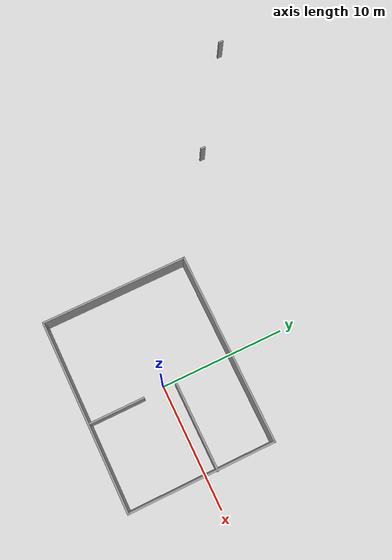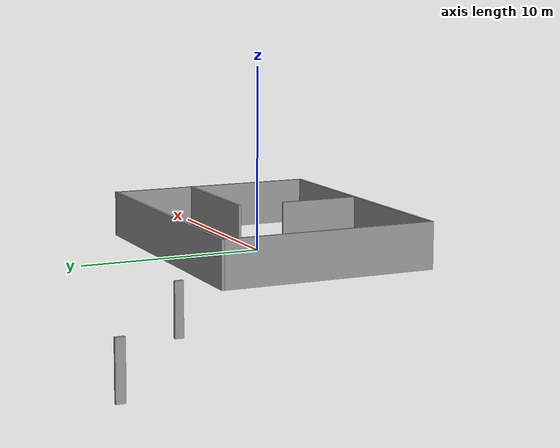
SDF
<?xml version='1.0'?>
<sdf version='1.6'>
  <model name='mars_student2'>
    <pose frame=''>-7.81529 5.00826 0 0 -0 0</pose>
    <link name='Wall_10'>
      <collision name='Wall_10_Collision'>
        <geometry>
          <box>
            <size>11.75 0.15 2.5</size>
          </box>
        </geometry>
        <pose frame=''>0 0 1.25 0 -0 0</pose>
      </collision>
      <visual name='Wall_10_Visual'>
        <pose frame=''>0 0 1.25 0 -0 0</pose>
        <geometry>
          <box>
            <size>11.75 0.15 2.5</size>
          </box>
        </geometry>
        <material>
          <script>
            <uri>file://media/materials/scripts/gazebo.material</uri>
            <name>Gazebo/Grey</name>
          </script>
          <ambient>1 1 1 1</ambient>
        </material>
        <meta>
          <layer>0</layer>
        </meta>
      </visual>
      <pose frame=''>15.0087 -5.31992 0 0 -0 1.5708</pose>
    </link>
    <link name='Wall_12'>
      <collision name='Wall_12_Collision'>
        <geometry>
          <box>
            <size>0.4 0.15 2.5</size>
          </box>
        </geometry>
        <pose frame=''>0 0 1.25 0 -0 0</pose>
      </collision>
      <visual name='Wall_12_Visual'>
        <pose frame=''>0 0 1.25 0 -0 0</pose>
        <geometry>
          <box>
            <size>0.4 0.15 2.5</size>
          </box>
        </geometry>
        <material>
          <script>
            <uri>file://media/materials/scripts/gazebo.material</uri>
            <name>Gazebo/Grey</name>
          </script>
          <ambient>1 1 1 1</ambient>
        </material>
        <meta>
          <layer>0</layer>
        </meta>
      </visual>
      <pose frame=''>-15.0695 10.9949 0 0 -0 -1.5708</pose>
    </link>
    <link name='Wall_13'>
      <collision name='Wall_13_Collision'>
        <geometry>
          <box>
            <size>0.4 0.15 2.5</size>
          </box>
        </geometry>
        <pose frame=''>0 0 1.25 0 -0 0</pose>
      </collision>
      <visual name='Wall_13_Visual'>
        <pose frame=''>0 0 1.25 0 -0 0</pose>
        <geometry>
          <box>
            <size>0.4 0.15 2.5</size>
          </box>
        </geometry>
        <material>
          <script>
            <uri>file://media/materials/scripts/gazebo.material</uri>
            <name>Gazebo/Grey</name>
          </script>
          <ambient>1 1 1 1</ambient>
        </material>
        <meta>
          <layer>0</layer>
        </meta>
      </visual>
      <pose frame=''>-7.4554 5.675 0 0 -0 1.5708</pose>
    </link>
    <link name='Wall_15'>
      <collision name='Wall_15_Collision'>
        <geometry>
          <box>
            <size>15.25 0.15 2.5</size>
          </box>
        </geometry>
        <pose frame=''>0 0 1.25 0 -0 0</pose>
      </collision>
      <visual name='Wall_15_Visual'>
        <pose frame=''>0 0 1.25 0 -0 0</pose>
        <geometry>
          <box>
            <size>15.25 0.15 2.5</size>
          </box>
        </geometry>
        <material>
          <script>
            <uri>file://media/materials/scripts/gazebo.material</uri>
            <name>Gazebo/Grey</name>
          </script>
          <ambient>1 1 1 1</ambient>
        </material>
        <meta>
          <layer>0</layer>
        </meta>
      </visual>
      <pose frame=''>7.45867 0.480082 0 0 -0 3.14159</pose>
    </link>
    <link name='Wall_16'>
      <collision name='Wall_16_Collision'>
        <geometry>
          <box>
            <size>11.75 0.15 2.5</size>
          </box>
        </geometry>
        <pose frame=''>0 0 1.25 0 -0 0</pose>
      </collision>
      <visual name='Wall_16_Visual'>
        <pose frame=''>0 0 1.25 0 -0 0</pose>
        <geometry>
          <box>
            <size>11.75 0.15 2.5</size>
          </box>
        </geometry>
        <material>
          <script>
            <uri>file://media/materials/scripts/gazebo.material</uri>
            <name>Gazebo/Grey</name>
          </script>
          <ambient>1 1 1 1</ambient>
        </material>
        <meta>
          <layer>0</layer>
        </meta>
      </visual>
      <pose frame=''>-0.09133 -5.31992 0 0 -0 -1.5708</pose>
    </link>
    <link name='Wall_17'>
      <collision name='Wall_17_Collision'>
        <geometry>
          <box>
            <size>0.4 0.15 2.5</size>
          </box>
        </geometry>
        <pose frame=''>0 0 1.25 0 -0 0</pose>
      </collision>
      <visual name='Wall_17_Visual'>
        <pose frame=''>0 0 1.25 0 -0 0</pose>
        <geometry>
          <box>
            <size>0.4 0.15 2.5</size>
          </box>
        </geometry>
        <material>
          <script>
            <uri>file://media/materials/scripts/gazebo.material</uri>
            <name>Gazebo/Grey</name>
          </script>
          <ambient>1 1 1 1</ambient>
        </material>
        <meta>
          <layer>0</layer>
        </meta>
      </visual>
      <pose frame=''>0.03367 -11.1199 0 0 -0 0</pose>
    </link>
    <link name='Wall_19'>
      <collision name='Wall_19_Collision'>
        <geometry>
          <box>
            <size>7 0.15 2.5</size>
          </box>
        </geometry>
        <pose frame=''>0 0 1.25 0 -0 0</pose>
      </collision>
      <visual name='Wall_19_Visual'>
        <pose frame=''>0 0 1.25 0 -0 0</pose>
        <geometry>
          <box>
            <size>7 0.15 2.5</size>
          </box>
        </geometry>
        <material>
          <script>
            <uri>file://media/materials/scripts/gazebo.material</uri>
            <name>Gazebo/Grey</name>
          </script>
          <ambient>1 1 1 1</ambient>
        </material>
        <meta>
          <layer>0</layer>
        </meta>
      </visual>
      <pose frame=''>11.6445 -4.10202 0 0 -0 0</pose>
    </link>
    <link name='Wall_20'>
      <collision name='Wall_20_Collision'>
        <geometry>
          <box>
            <size>0.15 0.15 2.5</size>
          </box>
        </geometry>
        <pose frame=''>0 0 1.25 0 -0 0</pose>
      </collision>
      <visual name='Wall_20_Visual'>
        <pose frame=''>0 0 1.25 0 -0 0</pose>
        <geometry>
          <box>
            <size>0.15 0.15 2.5</size>
          </box>
        </geometry>
        <material>
          <script>
            <uri>file://media/materials/scripts/gazebo.material</uri>
            <name>Gazebo/Grey</name>
          </script>
          <ambient>1 1 1 1</ambient>
        </material>
        <meta>
          <layer>0</layer>
        </meta>
      </visual>
      <pose frame=''>15.0695 -4.10202 0 0 -0 0</pose>
    </link>
    <link name='Wall_23'>
      <collision name='Wall_23_Collision'>
        <geometry>
          <box>
            <size>4.5 0.15 2.5</size>
          </box>
        </geometry>
        <pose frame=''>0 0 1.25 0 -0 0</pose>
      </collision>
      <visual name='Wall_23_Visual'>
        <pose frame=''>0 0 1.25 0 -0 0</pose>
        <geometry>
          <box>
            <size>4.5 0.15 2.5</size>
          </box>
        </geometry>
        <material>
          <script>
            <uri>file://media/materials/scripts/gazebo.material</uri>
            <name>Gazebo/Grey</name>
          </script>
          <ambient>1 1 1 1</ambient>
        </material>
        <meta>
          <layer>0</layer>
        </meta>
      </visual>
      <pose frame=''>8.1208 -8.90821 0 0 -0 -1.5708</pose>
    </link>
    <link name='Wall_9'>
      <collision name='Wall_9_Collision'>
        <geometry>
          <box>
            <size>15 0.15 2.5</size>
          </box>
        </geometry>
        <pose frame=''>0 0 1.25 0 -0 0</pose>
      </collision>
      <visual name='Wall_9_Visual'>
        <pose frame=''>0 0 1.25 0 -0 0</pose>
        <geometry>
          <box>
            <size>15 0.15 2.5</size>
          </box>
        </geometry>
        <material>
          <script>
            <uri>file://media/materials/scripts/gazebo.material</uri>
            <name>Gazebo/Grey</name>
          </script>
          <ambient>1 1 1 1</ambient>
        </material>
        <meta>
          <layer>0</layer>
        </meta>
      </visual>
      <pose frame=''>7.58367 -11.1199 0 0 -0 0</pose>
    </link>
    <static>1</static>
  </model>
</sdf>
